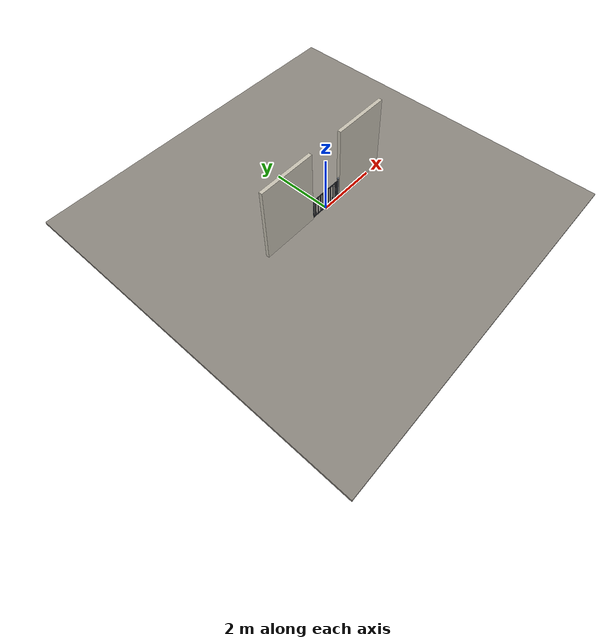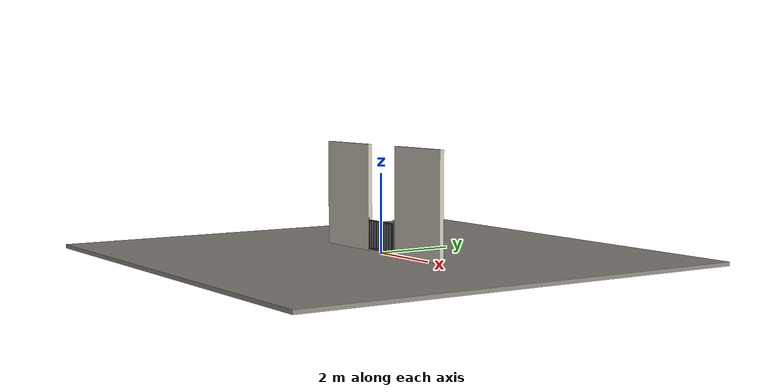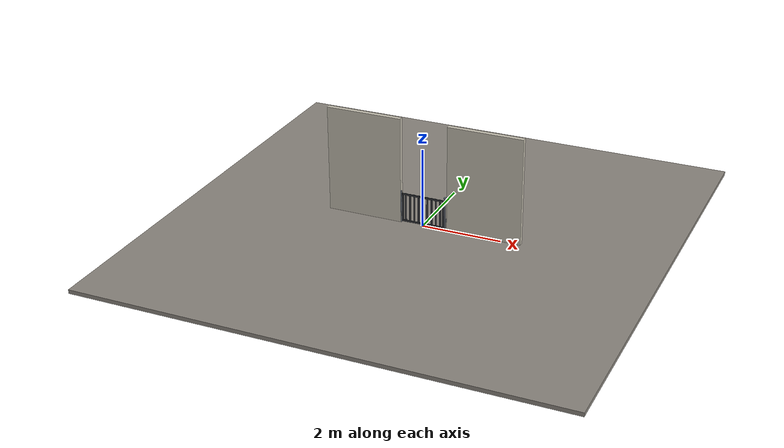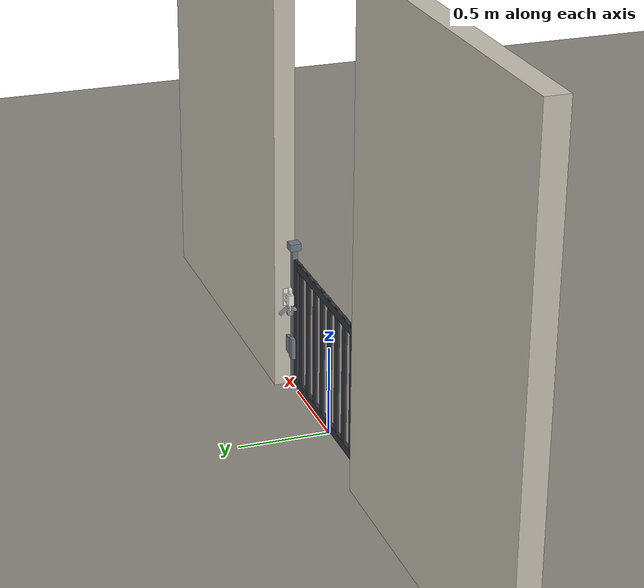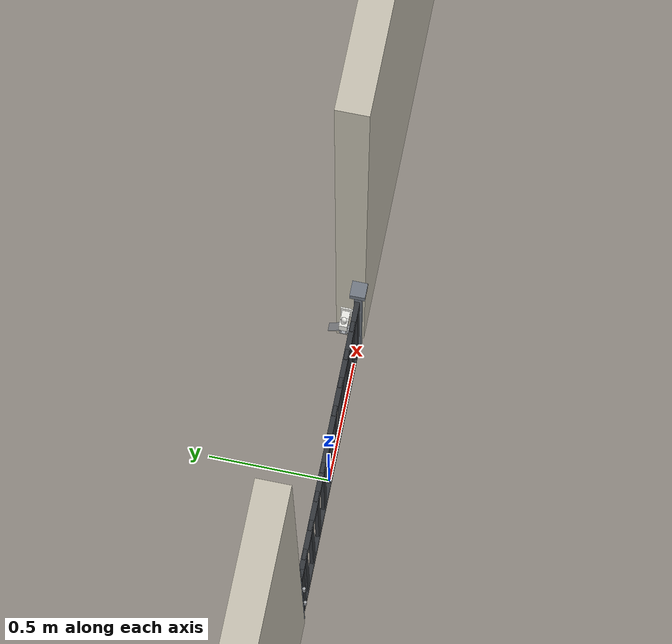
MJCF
<?xml version="1.0" ?>
<mujoco model="db0675_baby_gate_full">
  <compiler angle="radian" meshdir="../../hardware" texturedir="../../textures" autolimits="true" inertiafromgeom="false"/>
  <option timestep="0.002" integrator="implicitfast" cone="elliptic" impratio="10" noslip_iterations="3">
    <flag multiccd="enable"/>
  </option>
  <size memory="16M"/>
  <default>
    <geom condim="4" solref="0.005 1" solimp="0.95 0.99 0.001"/>
    <joint solreflimit="0.005 1" solimplimit="0.95 0.99 0.001"/>
    <tendon solreflimit="0.005 1"/>
    <equality solref="0.002 1"/>
  </default>
  <visual>
    <headlight ambient="0.4 0.4 0.4" diffuse="0.7 0.7 0.7" specular="0.2 0.2 0.2"/>
    <quality shadowsize="4096"/>
    <map znear="0.01" zfar="60"/>
  </visual>
  <asset>
    <mesh name="hinge_9b04d23f9a" file="hinge_9b04d23f9a.obj"/>
    <mesh name="hinge_jamb_1ed121a7f3" file="hinge_jamb_1ed121a7f3.obj"/>
    <material name="mat_floor" rgba="0.55 0.53 0.5 1" specular="0.2" shininess="0.15" reflectance="0"/>
    <material name="mat_wall" rgba="0.78 0.76 0.7 1" specular="0.2" shininess="0.1" reflectance="0"/>
    <material name="mat_leaf" rgba="0.2 0.21 0.23 1" specular="0.23" shininess="0.36" reflectance="0.02"/>
    <material name="mat_hinge" rgba="0.65 0.66 0.68 1" specular="0.74" shininess="0.5" reflectance="0.36"/>
    <material name="mat_op_pvc" rgba="0.92 0.92 0.9 1" specular="0.2" shininess="0.6" reflectance="0"/>
    <material name="mat_keeper" rgba="0.65 0.66 0.68 1" specular="0.74" shininess="0.5" reflectance="0.36"/>
    <material name="mat_frame" rgba="0.45 0.48 0.52 1" specular="0.32" shininess="0.6" reflectance="0.08"/>
    <texture name="skybox" type="skybox" builtin="gradient" rgb1="0.6 0.7 0.85" rgb2="0.9 0.92 0.95" width="256" height="256"/>
  </asset>
  <worldbody>
    <light name="sun" pos="1.5 -2.5 4" dir="-0.3 0.5 -0.8" directional="true" diffuse="0.8 0.8 0.8" specular="0.3 0.3 0.3" castshadow="true"/>
    <light name="fill" pos="-1.5 2.5 3" dir="0.3 -0.5 -0.7" directional="true" diffuse="0.35 0.35 0.4" castshadow="false"/>
    <camera name="robot_view" pos="0 -1.8345 0.91" xyaxes="1 0 0 0 0.26963 0.962964" fovy="52"/>
    <camera name="far_view" pos="0 1.9155 0.91" xyaxes="-1 0 0 0 -0.26963 0.962964" fovy="52"/>
    <camera name="iso" pos="1.425 -1.5345 1.21" xyaxes="0.741536 0.670913 0 -0.242917 0.268487 0.932151" fovy="46"/>
    <camera name="detail_handle" pos="0.687 -0.755 0.895" xyaxes="0.97561 0.219512 0 -0.070934 0.315262 0.94635" fovy="38"/>
    <geom name="floor" type="box" size="6 6 0.05" pos="0 0 -0.05" material="mat_floor" group="0" contype="1" conaffinity="1" friction="0.8 0.005 0.0001" density="2400"/>
    <geom name="wall_left" type="box" size="0.957 0.0575 1.35" pos="-1.543 0.0405 1.35" material="mat_wall" group="0" contype="1" conaffinity="1" friction="0.6 0.005 0.0001" density="800"/>
    <geom name="wall_right" type="box" size="0.942 0.0575 1.35" pos="1.558 0.0405 1.35" material="mat_wall" group="0" contype="1" conaffinity="1" friction="0.6 0.005 0.0001" density="800"/>
    <geom name="hinge_0_jamb" type="mesh" mesh="hinge_jamb_1ed121a7f3" pos="-0.553 -0.017 0.28" material="mat_hinge" group="1" contype="0" conaffinity="0" density="7850"/>
    <geom name="hinge_1_jamb" type="mesh" mesh="hinge_jamb_1ed121a7f3" pos="-0.553 -0.017 0.6" material="mat_hinge" group="1" contype="0" conaffinity="0" density="7850"/>
    <geom name="leaf_pin_housing" type="box" size="0.018 0.016 0.03" pos="0.507 0.045 0.565" material="mat_op_pvc" group="1" contype="0" conaffinity="0" density="1800"/>
    <geom name="leaf_pin_bracket" type="box" size="0.0185 0.016 0.01" pos="0.5435 0.045 0.574" material="mat_op_pvc" group="1" contype="0" conaffinity="0" density="1800"/>
    <geom name="leaf_pin_bracket_2" type="box" size="0.0185 0.016 0.006" pos="0.5435 0.045 0.544" material="mat_op_pvc" group="1" contype="0" conaffinity="0" density="1800"/>
    <geom name="leaf_pin_post_plate" type="box" size="0.003 0.022 0.05" pos="0.559 0.045 0.56" material="mat_op_pvc" group="1" contype="0" conaffinity="0" density="1800"/>
    <geom name="post_hinge" type="cylinder" size="0.015 0.415" pos="-0.571 0 0.415" material="mat_frame" group="0" contype="1" conaffinity="1" friction="0.6 0.005 0.0001" density="800"/>
    <geom name="post_hinge_cap" type="sphere" size="0.015" pos="-0.571 0 0.83" material="mat_frame" group="1" contype="0" conaffinity="0" density="800"/>
    <geom name="post_latch" type="box" size="0.015 0.015 0.415" pos="0.571 0 0.415" material="mat_frame" group="0" contype="1" conaffinity="1" friction="0.6 0.005 0.0001" density="800"/>
    <geom name="post_latch_cap" type="box" size="0.03 0.03 0.02" pos="0.571 0 0.85" material="mat_frame" group="1" contype="0" conaffinity="0" density="800"/>
    <geom name="gate_stop" type="box" size="0.02 0.012 0.06" pos="0.536 0.022 0.255" material="mat_frame" group="0" contype="1" conaffinity="1" friction="0.6 0.005 0.0001" density="800"/>
    <geom name="leaf_pin_post_plate_strap_0" type="box" size="0.005 0.0045 0.04" pos="0.559 0.019 0.56" material="mat_op_pvc" group="1" contype="0" conaffinity="0" density="7850"/>
    <geom name="gate_stop_strap_0" type="box" size="0.0305 0.0096 0.048" pos="0.586 0.022 0.255" material="mat_frame" group="1" contype="0" conaffinity="0" density="7850"/>
    <site name="approach_point" pos="0 -1.5 0" quat="1 0 0 0" size="0.05" rgba="0.2 0.9 0.2 0.5" group="4"/>
    <site name="goal_point" pos="0 1.5 0" quat="1 0 0 0" size="0.05" rgba="0.2 0.9 0.2 0.5" group="4"/>
    <site name="door_plane_center" pos="0 0 0.385" quat="1 0 0 0" size="0.02" rgba="0.2 0.9 0.2 0.5" group="4"/>
    <body name="leaf" pos="-0.556 0 0">
      <inertial pos="0.564614 0.001681 0.408583" mass="11.476332" quat="0.708175 0.705934 -0.004678 0.011118" diaginertia="0.522205053 1.243578969 1.762627279"/>
      <joint name="leaf_hinge" type="hinge" axis="0 0 -1" pos="0.003 -0.017 0" limited="true" range="0 1.570796" damping="1.198312" frictionloss="0.237216" stiffness="5" springref="-0.48" armature="0.02"/>
      <geom name="leaf_slab_col" type="box" size="0.55 0.01 0.375" pos="0.553 0 0.405" material="mat_leaf" group="3" contype="1" conaffinity="1" rgba="0.8 0.3 0.3 0.25" friction="0.4 0.005 0.0001" density="1"/>
      <geom name="leaf_rail_b" type="box" size="0.55 0.01 0.0225" pos="0.553 0 0.0525" material="mat_leaf" group="1" contype="0" conaffinity="0" density="1"/>
      <geom name="leaf_rail_t" type="box" size="0.55 0.01 0.0225" pos="0.553 0 0.7575" material="mat_leaf" group="1" contype="0" conaffinity="0" density="1"/>
      <geom name="leaf_stile_h" type="box" size="0.0225 0.01 0.375" pos="0.0255 0 0.405" material="mat_leaf" group="1" contype="0" conaffinity="0" density="1"/>
      <geom name="leaf_stile_l" type="box" size="0.0225 0.01 0.375" pos="1.0805 0 0.405" material="mat_leaf" group="1" contype="0" conaffinity="0" density="1"/>
      <geom name="leaf_picket_0" type="box" size="0.02 0.007 0.3615" pos="0.104111 0 0.425" material="mat_leaf" group="1" contype="0" conaffinity="0" density="1"/>
      <geom name="leaf_picket_1" type="box" size="0.02 0.007 0.3615" pos="0.216333 0 0.425" material="mat_leaf" group="1" contype="0" conaffinity="0" density="1"/>
      <geom name="leaf_picket_2" type="box" size="0.02 0.007 0.3615" pos="0.328556 0 0.425" material="mat_leaf" group="1" contype="0" conaffinity="0" density="1"/>
      <geom name="leaf_picket_3" type="box" size="0.02 0.007 0.3615" pos="0.440778 0 0.425" material="mat_leaf" group="1" contype="0" conaffinity="0" density="1"/>
      <geom name="leaf_picket_4" type="box" size="0.02 0.007 0.3615" pos="0.553 0 0.425" material="mat_leaf" group="1" contype="0" conaffinity="0" density="1"/>
      <geom name="leaf_picket_5" type="box" size="0.02 0.007 0.3615" pos="0.665222 0 0.425" material="mat_leaf" group="1" contype="0" conaffinity="0" density="1"/>
      <geom name="leaf_picket_6" type="box" size="0.02 0.007 0.3615" pos="0.777444 0 0.425" material="mat_leaf" group="1" contype="0" conaffinity="0" density="1"/>
      <geom name="leaf_picket_7" type="box" size="0.02 0.007 0.3615" pos="0.889667 0 0.425" material="mat_leaf" group="1" contype="0" conaffinity="0" density="1"/>
      <geom name="leaf_picket_8" type="box" size="0.02 0.007 0.3615" pos="1.001889 0 0.425" material="mat_leaf" group="1" contype="0" conaffinity="0" density="1"/>
      <geom name="hinge_0" type="mesh" mesh="hinge_9b04d23f9a" pos="0.003 -0.017 0.28" material="mat_hinge" group="1" contype="0" conaffinity="0" density="7850"/>
      <geom name="hinge_1" type="mesh" mesh="hinge_9b04d23f9a" pos="0.003 -0.017 0.6" material="mat_hinge" group="1" contype="0" conaffinity="0" density="7850"/>
      <geom name="leaf_cup_n" type="box" size="0.016 0.004 0.02" pos="1.063 0.033 0.505" material="mat_keeper" group="0" contype="1" conaffinity="1" friction="0.6 0.005 0.0001" density="7800"/>
      <geom name="leaf_cup_p" type="box" size="0.016 0.004 0.02" pos="1.063 0.057 0.505" material="mat_keeper" group="0" contype="1" conaffinity="1" friction="0.6 0.005 0.0001" density="7800"/>
      <geom name="leaf_cup_b" type="box" size="0.016 0.016 0.004" pos="1.063 0.045 0.481" material="mat_keeper" group="0" contype="1" conaffinity="1" friction="0.6 0.005 0.0001" density="7800"/>
      <geom name="leaf_cup_bracket" type="box" size="0.016 0.0095 0.004" pos="1.063 0.0195 0.505" material="mat_keeper" group="1" contype="0" conaffinity="0" density="7800"/>
      <geom name="leaf_cup_ramp" type="box" size="0.016 0.0301 0.004" pos="1.063 0.080844 0.502012" quat="0.934722 -0.355381 0 0" material="mat_keeper" group="0" contype="1" conaffinity="1" friction="0.12 0.005 0.0001" density="7800"/>
      <site name="leaf_edge_mid" pos="1.103 0 0.375" quat="1 0 0 0" size="0.02" rgba="0.2 0.9 0.2 0.5" group="4"/>
    </body>
    <body name="leaf_pin" pos="0.507 0.045 0.55">
      <inertial pos="0 0 0.037519" mass="0.228168" quat="0.707107 0 0.707107 0" diaginertia="0.000010167 0.000346413 0.000346413"/>
      <joint name="leaf_pin_slide" type="slide" axis="0 0 1" limited="true" range="0 0.05" damping="9.526824" frictionloss="0.25" stiffness="60" springref="-0.016667" armature="0.15"/>
      <geom name="leaf_pin_geom" type="capsule" size="0.006 0.0525" pos="0 0 0.0025" material="mat_op_pvc" group="0" contype="1" conaffinity="1" friction="0.6 0.005 0.0001" density="7850"/>
      <geom name="leaf_pin_knob" type="capsule" size="0.012 0.01" pos="0 0 0.065" material="mat_op_pvc" group="0" contype="1" conaffinity="1" friction="0.6 0.005 0.0001" density="7850"/>
      <site name="leaf_grip_pin" pos="0 0 0.065" quat="1 0 0 0" size="0.012" rgba="0.2 0.9 0.2 0.5" group="4"/>
    </body>
  </worldbody>
  <sensor>
    <jointpos name="leaf_hinge_pos" joint="leaf_hinge"/>
    <jointvel name="leaf_hinge_vel" joint="leaf_hinge"/>
    <jointpos name="leaf_pin_slide_pos" joint="leaf_pin_slide"/>
    <jointvel name="leaf_pin_slide_vel" joint="leaf_pin_slide"/>
  </sensor>
</mujoco>
